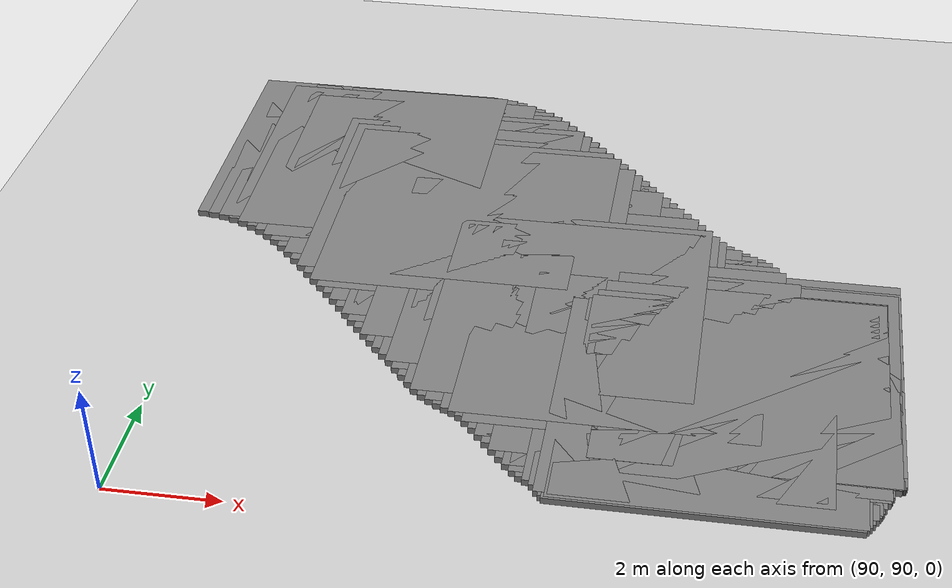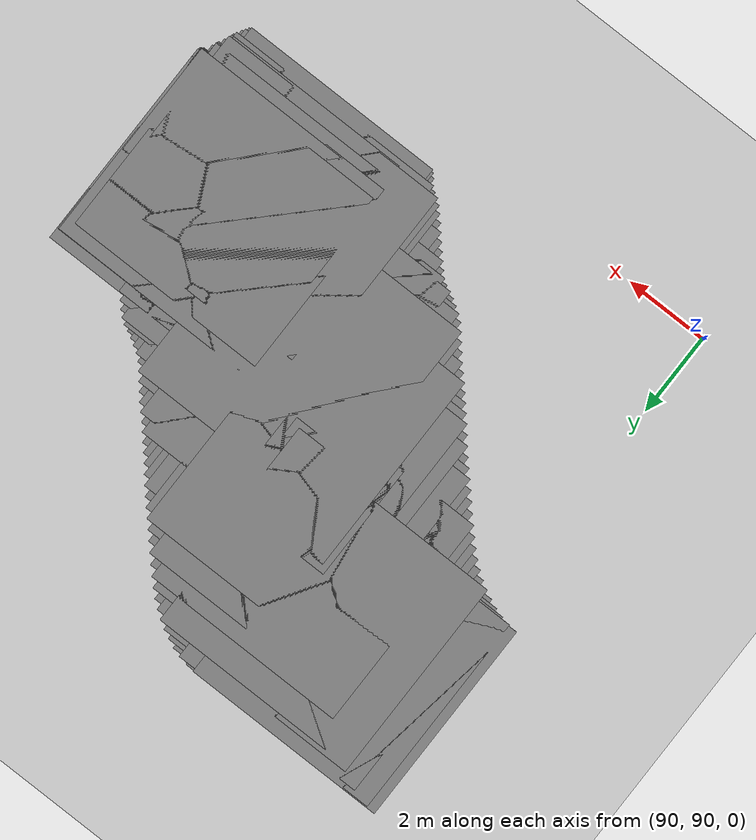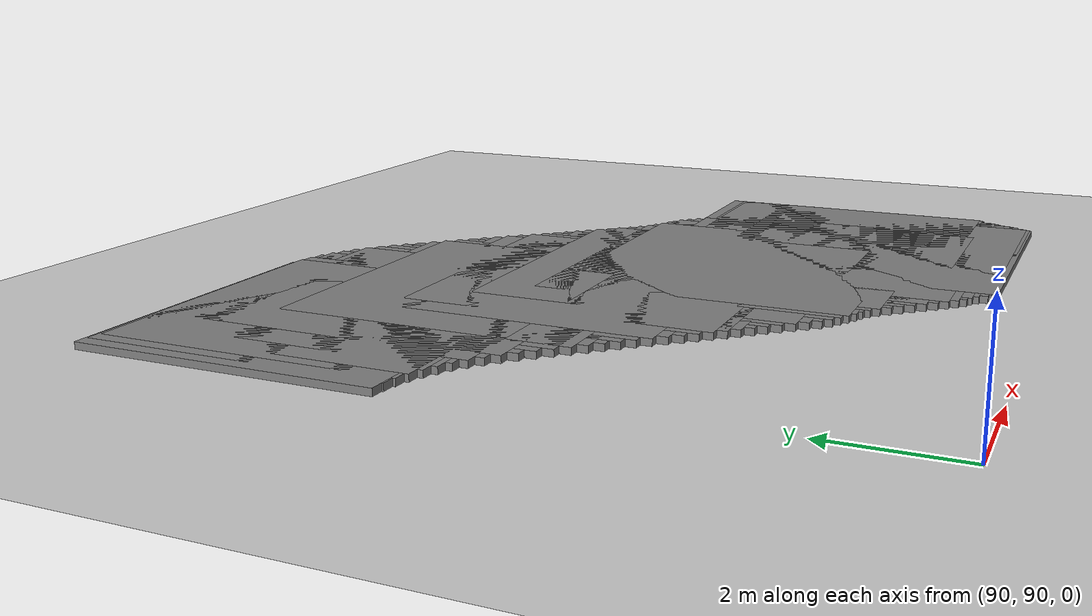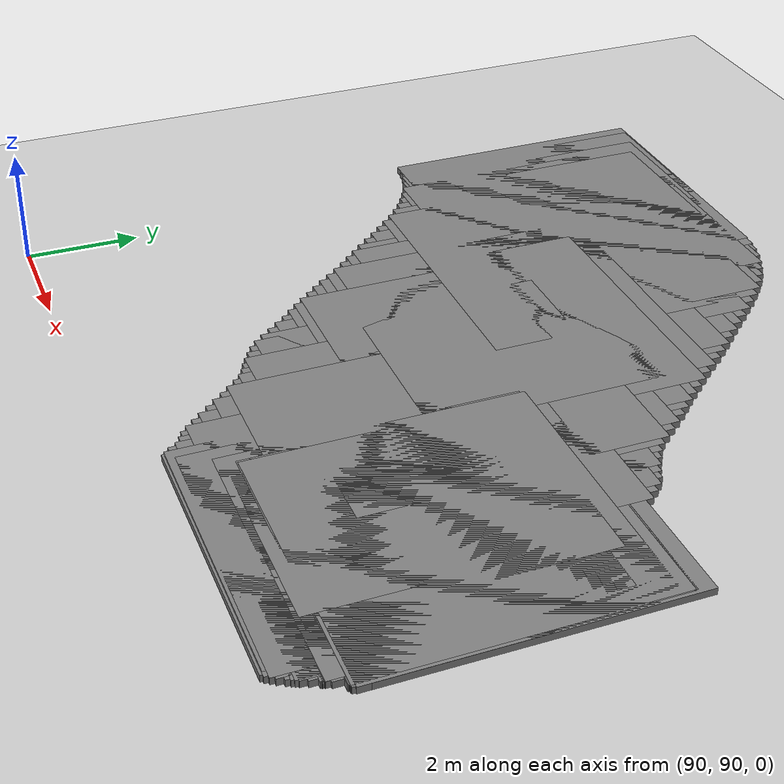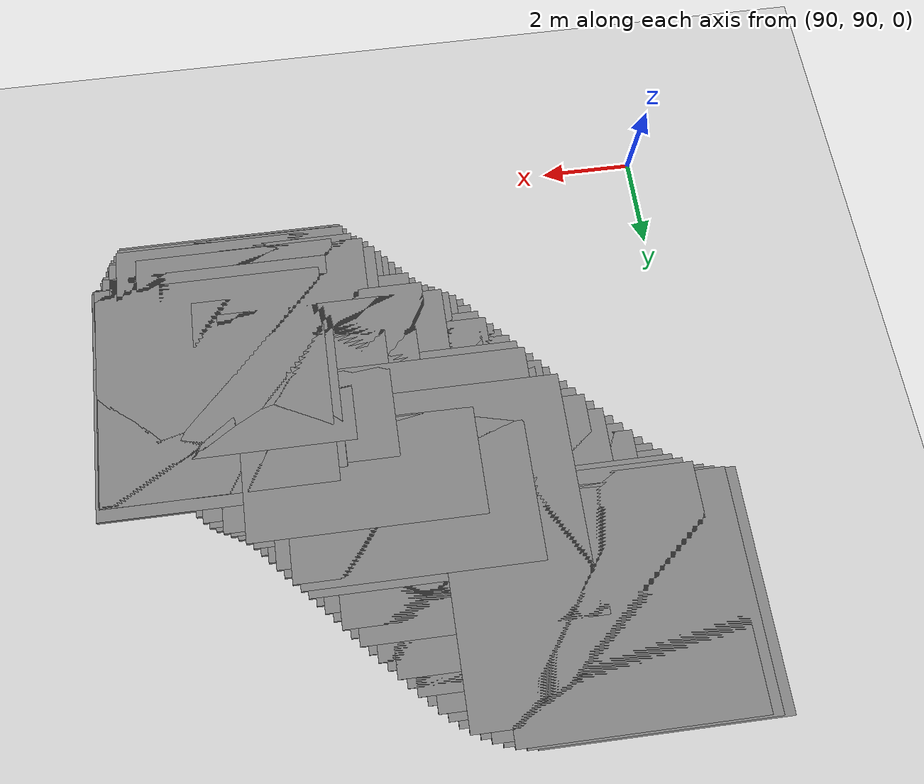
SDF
<sdf version="1.6">
 <world name="default">
  <include><uri>model://sun</uri></include>
  <include><uri>model://ground_plane</uri></include>
  <model name="road_segment_0">
   <static>true</static>
   <link name="link">
    <visual name="visual">
     <geometry><box><size>5.0 5.0 0.2</size></box></geometry>
     <material><ambient>0.5 0.5 0.5 1</ambient><diffuse>0.5 0.5 0.5 1</diffuse></material>
     <pose>100.0 94.5166298929436 0.0 0 0 0</pose>
    </visual>
    <collision name="collision">
     <geometry><box><size>5.0 5.0 0.2</size></box></geometry>
     <pose>100.0 94.5166298929436 0.0 0 0 0</pose>
    </collision>
   </link>
  </model>
  <model name="road_segment_1">
   <static>true</static>
   <link name="link">
    <visual name="visual">
     <geometry><box><size>5.0 5.0 0.2</size></box></geometry>
     <material><ambient>0.5 0.5 0.5 1</ambient><diffuse>0.5 0.5 0.5 1</diffuse></material>
     <pose>99.99839161802979 94.30661109748615 0.0 0 0 0</pose>
    </visual>
    <collision name="collision">
     <geometry><box><size>5.0 5.0 0.2</size></box></geometry>
     <pose>99.99839161802979 94.30661109748615 0.0 0 0 0</pose>
    </collision>
   </link>
  </model>
  <model name="road_segment_2">
   <static>true</static>
   <link name="link">
    <visual name="visual">
     <geometry><box><size>5.0 5.0 0.2</size></box></geometry>
     <material><ambient>0.5 0.5 0.5 1</ambient><diffuse>0.5 0.5 0.5 1</diffuse></material>
     <pose>99.97909103441992 94.25308490643219 0.0 0 0 0</pose>
    </visual>
    <collision name="collision">
     <geometry><box><size>5.0 5.0 0.2</size></box></geometry>
     <pose>99.97909103441992 94.25308490643219 0.0 0 0 0</pose>
    </collision>
   </link>
  </model>
  <model name="road_segment_3">
   <static>true</static>
   <link name="link">
    <visual name="visual">
     <geometry><box><size>5.0 5.0 0.2</size></box></geometry>
     <material><ambient>0.5 0.5 0.5 1</ambient><diffuse>0.5 0.5 0.5 1</diffuse></material>
     <pose>99.96415605901025 94.24654735637526 0.0 0 0 0</pose>
    </visual>
    <collision name="collision">
     <geometry><box><size>5.0 5.0 0.2</size></box></geometry>
     <pose>99.96415605901025 94.24654735637526 0.0 0 0 0</pose>
    </collision>
   </link>
  </model>
  <model name="road_segment_4">
   <static>true</static>
   <link name="link">
    <visual name="visual">
     <geometry><box><size>5.0 5.0 0.2</size></box></geometry>
     <material><ambient>0.5 0.5 0.5 1</ambient><diffuse>0.5 0.5 0.5 1</diffuse></material>
     <pose>99.95450576718899 94.24613875949943 0.0 0 0 0</pose>
    </visual>
    <collision name="collision">
     <geometry><box><size>5.0 5.0 0.2</size></box></geometry>
     <pose>99.95450576718899 94.24613875949943 0.0 0 0 0</pose>
    </collision>
   </link>
  </model>
  <model name="road_segment_5">
   <static>true</static>
   <link name="link">
    <visual name="visual">
     <geometry><box><size>5.0 5.0 0.2</size></box></geometry>
     <material><ambient>0.5 0.5 0.5 1</ambient><diffuse>0.5 0.5 0.5 1</diffuse></material>
     <pose>99.94439593768995 94.25594508457758 0.0 0 0 0</pose>
    </visual>
    <collision name="collision">
     <geometry><box><size>5.0 5.0 0.2</size></box></geometry>
     <pose>99.94439593768995 94.25594508457758 0.0 0 0 0</pose>
    </collision>
   </link>
  </model>
  <model name="road_segment_6">
   <static>true</static>
   <link name="link">
    <visual name="visual">
     <geometry><box><size>5.0 5.0 0.2</size></box></geometry>
     <material><ambient>0.5 0.5 0.5 1</ambient><diffuse>0.5 0.5 0.5 1</diffuse></material>
     <pose>99.93681356554934 94.25512789081864 0.0 0 0 0</pose>
    </visual>
    <collision name="collision">
     <geometry><box><size>5.0 5.0 0.2</size></box></geometry>
     <pose>99.93681356554934 94.25512789081864 0.0 0 0 0</pose>
    </collision>
   </link>
  </model>
  <model name="road_segment_7">
   <static>true</static>
   <link name="link">
    <visual name="visual">
     <geometry><box><size>5.0 5.0 0.2</size></box></geometry>
     <material><ambient>0.5 0.5 0.5 1</ambient><diffuse>0.5 0.5 0.5 1</diffuse></material>
     <pose>99.9577225311294 94.2506333251554 0.0 0 0 0</pose>
    </visual>
    <collision name="collision">
     <geometry><box><size>5.0 5.0 0.2</size></box></geometry>
     <pose>99.9577225311294 94.2506333251554 0.0 0 0 0</pose>
    </collision>
   </link>
  </model>
  <model name="road_segment_8">
   <static>true</static>
   <link name="link">
    <visual name="visual">
     <geometry><box><size>5.0 5.0 0.2</size></box></geometry>
     <material><ambient>0.5 0.5 0.5 1</ambient><diffuse>0.5 0.5 0.5 1</diffuse></material>
     <pose>99.95726299341896 94.2469559532511 0.0 0 0 0</pose>
    </visual>
    <collision name="collision">
     <geometry><box><size>5.0 5.0 0.2</size></box></geometry>
     <pose>99.95726299341896 94.2469559532511 0.0 0 0 0</pose>
    </collision>
   </link>
  </model>
  <model name="road_segment_9">
   <static>true</static>
   <link name="link">
    <visual name="visual">
     <geometry><box><size>5.0 5.0 0.2</size></box></geometry>
     <material><ambient>0.5 0.5 0.5 1</ambient><diffuse>0.5 0.5 0.5 1</diffuse></material>
     <pose>99.95473553602788 94.24286998447096 0.0 0 0 0</pose>
    </visual>
    <collision name="collision">
     <geometry><box><size>5.0 5.0 0.2</size></box></geometry>
     <pose>99.95473553602788 94.24286998447096 0.0 0 0 0</pose>
    </collision>
   </link>
  </model>
  <model name="road_segment_10">
   <static>true</static>
   <link name="link">
    <visual name="visual">
     <geometry><box><size>5.0 5.0 0.2</size></box></geometry>
     <material><ambient>0.5 0.5 0.5 1</ambient><diffuse>0.5 0.5 0.5 1</diffuse></material>
     <pose>99.94140894258841 94.25022472827956 0.0 0 0 0</pose>
    </visual>
    <collision name="collision">
     <geometry><box><size>5.0 5.0 0.2</size></box></geometry>
     <pose>99.94140894258841 94.25022472827956 0.0 0 0 0</pose>
    </collision>
   </link>
  </model>
  <model name="road_segment_11">
   <static>true</static>
   <link name="link">
    <visual name="visual">
     <geometry><box><size>5.0 5.0 0.2</size></box></geometry>
     <material><ambient>0.5 0.5 0.5 1</ambient><diffuse>0.5 0.5 0.5 1</diffuse></material>
     <pose>99.93796240980912 94.24818174388588 0.0 0 0 0</pose>
    </visual>
    <collision name="collision">
     <geometry><box><size>5.0 5.0 0.2</size></box></geometry>
     <pose>99.93796240980912 94.24818174388588 0.0 0 0 0</pose>
    </collision>
   </link>
  </model>
  <model name="road_segment_12">
   <static>true</static>
   <link name="link">
    <visual name="visual">
     <geometry><box><size>5.0 5.0 0.2</size></box></geometry>
     <material><ambient>0.5 0.5 0.5 1</ambient><diffuse>0.5 0.5 0.5 1</diffuse></material>
     <pose>99.936124259 94.24205279071202 0.0 0 0 0</pose>
    </visual>
    <collision name="collision">
     <geometry><box><size>5.0 5.0 0.2</size></box></geometry>
     <pose>99.936124259 94.24205279071202 0.0 0 0 0</pose>
    </collision>
   </link>
  </model>
  <model name="road_segment_13">
   <static>true</static>
   <link name="link">
    <visual name="visual">
     <geometry><box><size>5.0 5.0 0.2</size></box></geometry>
     <material><ambient>0.5 0.5 0.5 1</ambient><diffuse>0.5 0.5 0.5 1</diffuse></material>
     <pose>99.93152888192827 94.23755822505605 0.0 0 0 0</pose>
    </visual>
    <collision name="collision">
     <geometry><box><size>5.0 5.0 0.2</size></box></geometry>
     <pose>99.93152888192827 94.23755822505605 0.0 0 0 0</pose>
    </collision>
   </link>
  </model>
  <model name="road_segment_14">
   <static>true</static>
   <link name="link">
    <visual name="visual">
     <geometry><box><size>5.0 5.0 0.2</size></box></geometry>
     <material><ambient>0.5 0.5 0.5 1</ambient><diffuse>0.5 0.5 0.5 1</diffuse></material>
     <pose>99.92486558520854 94.22693470621898 0.0 0 0 0</pose>
    </visual>
    <collision name="collision">
     <geometry><box><size>5.0 5.0 0.2</size></box></geometry>
     <pose>99.92486558520854 94.22693470621898 0.0 0 0 0</pose>
    </collision>
   </link>
  </model>
  <model name="road_segment_15">
   <static>true</static>
   <link name="link">
    <visual name="visual">
     <geometry><box><size>5.0 5.0 0.2</size></box></geometry>
     <material><ambient>0.5 0.5 0.5 1</ambient><diffuse>0.5 0.5 0.5 1</diffuse></material>
     <pose>99.92164882126812 94.22775189997064 0.0 0 0 0</pose>
    </visual>
    <collision name="collision">
     <geometry><box><size>5.0 5.0 0.2</size></box></geometry>
     <pose>99.92164882126812 94.22775189997064 0.0 0 0 0</pose>
    </collision>
   </link>
  </model>
  <model name="road_segment_16">
   <static>true</static>
   <link name="link">
    <visual name="visual">
     <geometry><box><size>5.0 5.0 0.2</size></box></geometry>
     <material><ambient>0.5 0.5 0.5 1</ambient><diffuse>0.5 0.5 0.5 1</diffuse></material>
     <pose>99.91291760486773 94.21467679986404 0.0 0 0 0</pose>
    </visual>
    <collision name="collision">
     <geometry><box><size>5.0 5.0 0.2</size></box></geometry>
     <pose>99.91291760486773 94.21467679986404 0.0 0 0 0</pose>
    </collision>
   </link>
  </model>
  <model name="road_segment_17">
   <static>true</static>
   <link name="link">
    <visual name="visual">
     <geometry><box><size>5.0 5.0 0.2</size></box></geometry>
     <material><ambient>0.5 0.5 0.5 1</ambient><diffuse>0.5 0.5 0.5 1</diffuse></material>
     <pose>99.8012499425372 94.04837787038967 0.0 0 0 0</pose>
    </visual>
    <collision name="collision">
     <geometry><box><size>5.0 5.0 0.2</size></box></geometry>
     <pose>99.8012499425372 94.04837787038967 0.0 0 0 0</pose>
    </collision>
   </link>
  </model>
  <model name="road_segment_18">
   <static>true</static>
   <link name="link">
    <visual name="visual">
     <geometry><box><size>5.0 5.0 0.2</size></box></geometry>
     <material><ambient>0.5 0.5 0.5 1</ambient><diffuse>0.5 0.5 0.5 1</diffuse></material>
     <pose>99.75391755891708 93.93846531012187 0.0 0 0 0</pose>
    </visual>
    <collision name="collision">
     <geometry><box><size>5.0 5.0 0.2</size></box></geometry>
     <pose>99.75391755891708 93.93846531012187 0.0 0 0 0</pose>
    </collision>
   </link>
  </model>
  <model name="road_segment_19">
   <static>true</static>
   <link name="link">
    <visual name="visual">
     <geometry><box><size>5.0 5.0 0.2</size></box></geometry>
     <material><ambient>0.5 0.5 0.5 1</ambient><diffuse>0.5 0.5 0.5 1</diffuse></material>
     <pose>99.74380772941804 93.90986352863912 0.0 0 0 0</pose>
    </visual>
    <collision name="collision">
     <geometry><box><size>5.0 5.0 0.2</size></box></geometry>
     <pose>99.74380772941804 93.90986352863912 0.0 0 0 0</pose>
    </collision>
   </link>
  </model>
  <model name="road_segment_20">
   <static>true</static>
   <link name="link">
    <visual name="visual">
     <geometry><box><size>5.0 5.0 0.2</size></box></geometry>
     <material><ambient>0.5 0.5 0.5 1</ambient><diffuse>0.5 0.5 0.5 1</diffuse></material>
     <pose>99.74817333761823 93.9298847756785 0.0 0 0 0</pose>
    </visual>
    <collision name="collision">
     <geometry><box><size>5.0 5.0 0.2</size></box></geometry>
     <pose>99.74817333761823 93.9298847756785 0.0 0 0 0</pose>
    </collision>
   </link>
  </model>
  <model name="road_segment_21">
   <static>true</static>
   <link name="link">
    <visual name="visual">
     <geometry><box><size>5.0 5.0 0.2</size></box></geometry>
     <material><ambient>0.5 0.5 0.5 1</ambient><diffuse>0.5 0.5 0.5 1</diffuse></material>
     <pose>99.75575570975884 93.94009969763249 0.0 0 0 0</pose>
    </visual>
    <collision name="collision">
     <geometry><box><size>5.0 5.0 0.2</size></box></geometry>
     <pose>99.75575570975884 93.94009969763249 0.0 0 0 0</pose>
    </collision>
   </link>
  </model>
  <model name="road_segment_22">
   <static>true</static>
   <link name="link">
    <visual name="visual">
     <geometry><box><size>5.0 5.0 0.2</size></box></geometry>
     <material><ambient>0.5 0.5 0.5 1</ambient><diffuse>0.5 0.5 0.5 1</diffuse></material>
     <pose>99.75828316711728 93.9629811228245 0.0 0 0 0</pose>
    </visual>
    <collision name="collision">
     <geometry><box><size>5.0 5.0 0.2</size></box></geometry>
     <pose>99.75828316711728 93.9629811228245 0.0 0 0 0</pose>
    </collision>
   </link>
  </model>
  <model name="road_segment_23">
   <static>true</static>
   <link name="link">
    <visual name="visual">
     <geometry><box><size>5.0 5.0 0.2</size></box></geometry>
     <material><ambient>0.5 0.5 0.5 1</ambient><diffuse>0.5 0.5 0.5 1</diffuse></material>
     <pose>99.76058085563682 93.96788428536357 0.0 0 0 0</pose>
    </visual>
    <collision name="collision">
     <geometry><box><size>5.0 5.0 0.2</size></box></geometry>
     <pose>99.76058085563682 93.96788428536357 0.0 0 0 0</pose>
    </collision>
   </link>
  </model>
  <model name="road_segment_24">
   <static>true</static>
   <link name="link">
    <visual name="visual">
     <geometry><box><size>5.0 5.0 0.2</size></box></geometry>
     <material><ambient>0.5 0.5 0.5 1</ambient><diffuse>0.5 0.5 0.5 1</diffuse></material>
     <pose>99.76264877531746 93.96747568848048 0.0 0 0 0</pose>
    </visual>
    <collision name="collision">
     <geometry><box><size>5.0 5.0 0.2</size></box></geometry>
     <pose>99.76264877531746 93.96747568848048 0.0 0 0 0</pose>
    </collision>
   </link>
  </model>
  <model name="road_segment_25">
   <static>true</static>
   <link name="link">
    <visual name="visual">
     <geometry><box><size>5.0 5.0 0.2</size></box></geometry>
     <material><ambient>0.5 0.5 0.5 1</ambient><diffuse>0.5 0.5 0.5 1</diffuse></material>
     <pose>99.76264877531746 93.96706709160463 0.0 0 0 0</pose>
    </visual>
    <collision name="collision">
     <geometry><box><size>5.0 5.0 0.2</size></box></geometry>
     <pose>99.76264877531746 93.96706709160463 0.0 0 0 0</pose>
    </collision>
   </link>
  </model>
  <model name="road_segment_26">
   <static>true</static>
   <link name="link">
    <visual name="visual">
     <geometry><box><size>5.0 5.0 0.2</size></box></geometry>
     <material><ambient>0.5 0.5 0.5 1</ambient><diffuse>0.5 0.5 0.5 1</diffuse></material>
     <pose>99.76333808186679 93.97319604477848 0.0 0 0 0</pose>
    </visual>
    <collision name="collision">
     <geometry><box><size>5.0 5.0 0.2</size></box></geometry>
     <pose>99.76333808186679 93.97319604477848 0.0 0 0 0</pose>
    </collision>
   </link>
  </model>
  <model name="road_segment_27">
   <static>true</static>
   <link name="link">
    <visual name="visual">
     <geometry><box><size>5.0 5.0 0.2</size></box></geometry>
     <material><ambient>0.5 0.5 0.5 1</ambient><diffuse>0.5 0.5 0.5 1</diffuse></material>
     <pose>99.76609530809678 93.9736046416543 0.0 0 0 0</pose>
    </visual>
    <collision name="collision">
     <geometry><box><size>5.0 5.0 0.2</size></box></geometry>
     <pose>99.76609530809678 93.9736046416543 0.0 0 0 0</pose>
    </collision>
   </link>
  </model>
  <model name="road_segment_28">
   <static>true</static>
   <link name="link">
    <visual name="visual">
     <geometry><box><size>5.0 5.0 0.2</size></box></geometry>
     <material><ambient>0.5 0.5 0.5 1</ambient><diffuse>0.5 0.5 0.5 1</diffuse></material>
     <pose>99.76701438351766 93.97156165726787 0.0 0 0 0</pose>
    </visual>
    <collision name="collision">
     <geometry><box><size>5.0 5.0 0.2</size></box></geometry>
     <pose>99.76701438351766 93.97156165726787 0.0 0 0 0</pose>
    </collision>
   </link>
  </model>
  <model name="road_segment_29">
   <static>true</static>
   <link name="link">
    <visual name="visual">
     <geometry><box><size>5.0 5.0 0.2</size></box></geometry>
     <material><ambient>0.5 0.5 0.5 1</ambient><diffuse>0.5 0.5 0.5 1</diffuse></material>
     <pose>99.76678461467876 93.96911007599833 0.0 0 0 0</pose>
    </visual>
    <collision name="collision">
     <geometry><box><size>5.0 5.0 0.2</size></box></geometry>
     <pose>99.76678461467876 93.96911007599833 0.0 0 0 0</pose>
    </collision>
   </link>
  </model>
  <model name="road_segment_30">
   <static>true</static>
   <link name="link">
    <visual name="visual">
     <geometry><box><size>5.0 5.0 0.2</size></box></geometry>
     <material><ambient>0.5 0.5 0.5 1</ambient><diffuse>0.5 0.5 0.5 1</diffuse></material>
     <pose>99.767703690067 93.9719702541437 0.0 0 0 0</pose>
    </visual>
    <collision name="collision">
     <geometry><box><size>5.0 5.0 0.2</size></box></geometry>
     <pose>99.767703690067 93.9719702541437 0.0 0 0 0</pose>
    </collision>
   </link>
  </model>
  <model name="road_segment_31">
   <static>true</static>
   <link name="link">
    <visual name="visual">
     <geometry><box><size>5.0 5.0 0.2</size></box></geometry>
     <material><ambient>0.5 0.5 0.5 1</ambient><diffuse>0.5 0.5 0.5 1</diffuse></material>
     <pose>99.67878314415827 93.7778867369455 0.0 0 0 0</pose>
    </visual>
    <collision name="collision">
     <geometry><box><size>5.0 5.0 0.2</size></box></geometry>
     <pose>99.67878314415827 93.7778867369455 0.0 0 0 0</pose>
    </collision>
   </link>
  </model>
  <model name="road_segment_32">
   <static>true</static>
   <link name="link">
    <visual name="visual">
     <geometry><box><size>5.0 5.0 0.2</size></box></geometry>
     <material><ambient>0.5 0.5 0.5 1</ambient><diffuse>0.5 0.5 0.5 1</diffuse></material>
     <pose>99.63604613757725 93.66919996731248 0.0 0 0 0</pose>
    </visual>
    <collision name="collision">
     <geometry><box><size>5.0 5.0 0.2</size></box></geometry>
     <pose>99.63604613757725 93.66919996731248 0.0 0 0 0</pose>
    </collision>
   </link>
  </model>
  <model name="road_segment_33">
   <static>true</static>
   <link name="link">
    <visual name="visual">
     <geometry><box><size>5.0 5.0 0.2</size></box></geometry>
     <material><ambient>0.5 0.5 0.5 1</ambient><diffuse>0.5 0.5 0.5 1</diffuse></material>
     <pose>99.6098524883761 93.62057693879035 0.0 0 0 0</pose>
    </visual>
    <collision name="collision">
     <geometry><box><size>5.0 5.0 0.2</size></box></geometry>
     <pose>99.6098524883761 93.62057693879035 0.0 0 0 0</pose>
    </collision>
   </link>
  </model>
  <model name="road_segment_34">
   <static>true</static>
   <link name="link">
    <visual name="visual">
     <geometry><box><size>5.0 5.0 0.2</size></box></geometry>
     <material><ambient>0.5 0.5 0.5 1</ambient><diffuse>0.5 0.5 0.5 1</diffuse></material>
     <pose>99.58894352279603 93.5739968946619 0.0 0 0 0</pose>
    </visual>
    <collision name="collision">
     <geometry><box><size>5.0 5.0 0.2</size></box></geometry>
     <pose>99.58894352279603 93.5739968946619 0.0 0 0 0</pose>
    </collision>
   </link>
  </model>
  <model name="road_segment_35">
   <static>true</static>
   <link name="link">
    <visual name="visual">
     <geometry><box><size>5.0 5.0 0.2</size></box></geometry>
     <material><ambient>0.5 0.5 0.5 1</ambient><diffuse>0.5 0.5 0.5 1</diffuse></material>
     <pose>99.55700565229604 93.50698700661825 0.0 0 0 0</pose>
    </visual>
    <collision name="collision">
     <geometry><box><size>5.0 5.0 0.2</size></box></geometry>
     <pose>99.55700565229604 93.50698700661825 0.0 0 0 0</pose>
    </collision>
   </link>
  </model>
  <model name="road_segment_36">
   <static>true</static>
   <link name="link">
    <visual name="visual">
     <geometry><box><size>5.0 5.0 0.2</size></box></geometry>
     <material><ambient>0.5 0.5 0.5 1</ambient><diffuse>0.5 0.5 0.5 1</diffuse></material>
     <pose>99.49795505720667 93.40442919015906 0.0 0 0 0</pose>
    </visual>
    <collision name="collision">
     <geometry><box><size>5.0 5.0 0.2</size></box></geometry>
     <pose>99.49795505720667 93.40442919015906 0.0 0 0 0</pose>
    </collision>
   </link>
  </model>
  <model name="road_segment_37">
   <static>true</static>
   <link name="link">
    <visual name="visual">
     <geometry><box><size>5.0 5.0 0.2</size></box></geometry>
     <material><ambient>0.5 0.5 0.5 1</ambient><diffuse>0.5 0.5 0.5 1</diffuse></material>
     <pose>99.45039290471502 93.33292473645217 0.0 0 0 0</pose>
    </visual>
    <collision name="collision">
     <geometry><box><size>5.0 5.0 0.2</size></box></geometry>
     <pose>99.45039290471502 93.33292473645217 0.0 0 0 0</pose>
    </collision>
   </link>
  </model>
  <model name="road_segment_38">
   <static>true</static>
   <link name="link">
    <visual name="visual">
     <geometry><box><size>5.0 5.0 0.2</size></box></geometry>
     <material><ambient>0.5 0.5 0.5 1</ambient><diffuse>0.5 0.5 0.5 1</diffuse></material>
     <pose>99.40627728503533 93.27000081718866 0.0 0 0 0</pose>
    </visual>
    <collision name="collision">
     <geometry><box><size>5.0 5.0 0.2</size></box></geometry>
     <pose>99.40627728503533 93.27000081718866 0.0 0 0 0</pose>
    </collision>
   </link>
  </model>
  <model name="road_segment_39">
   <static>true</static>
   <link name="link">
    <visual name="visual">
     <geometry><box><size>5.0 5.0 0.2</size></box></geometry>
     <material><ambient>0.5 0.5 0.5 1</ambient><diffuse>0.5 0.5 0.5 1</diffuse></material>
     <pose>99.36216166535563 93.22954972623407 0.0 0 0 0</pose>
    </visual>
    <collision name="collision">
     <geometry><box><size>5.0 5.0 0.2</size></box></geometry>
     <pose>99.36216166535563 93.22954972623407 0.0 0 0 0</pose>
    </collision>
   </link>
  </model>
  <model name="road_segment_40">
   <static>true</static>
   <link name="link">
    <visual name="visual">
     <geometry><box><size>5.0 5.0 0.2</size></box></geometry>
     <material><ambient>0.5 0.5 0.5 1</ambient><diffuse>0.5 0.5 0.5 1</diffuse></material>
     <pose>99.30586829649624 93.27939854539096 0.0 0 0 0</pose>
    </visual>
    <collision name="collision">
     <geometry><box><size>5.0 5.0 0.2</size></box></geometry>
     <pose>99.30586829649624 93.27939854539096 0.0 0 0 0</pose>
    </collision>
   </link>
  </model>
  <model name="road_segment_41">
   <static>true</static>
   <link name="link">
    <visual name="visual">
     <geometry><box><size>5.0 5.0 0.2</size></box></geometry>
     <material><ambient>0.5 0.5 0.5 1</ambient><diffuse>0.5 0.5 0.5 1</diffuse></material>
     <pose>99.21878590136399 93.36520388983924 0.0 0 0 0</pose>
    </visual>
    <collision name="collision">
     <geometry><box><size>5.0 5.0 0.2</size></box></geometry>
     <pose>99.21878590136399 93.36520388983924 0.0 0 0 0</pose>
    </collision>
   </link>
  </model>
  <model name="road_segment_42">
   <static>true</static>
   <link name="link">
    <visual name="visual">
     <geometry><box><size>5.0 5.0 0.2</size></box></geometry>
     <material><ambient>0.5 0.5 0.5 1</ambient><diffuse>0.5 0.5 0.5 1</diffuse></material>
     <pose>99.13170350626437 93.49472910027058 0.0 0 0 0</pose>
    </visual>
    <collision name="collision">
     <geometry><box><size>5.0 5.0 0.2</size></box></geometry>
     <pose>99.13170350626437 93.49472910027058 0.0 0 0 0</pose>
    </collision>
   </link>
  </model>
  <model name="road_segment_43">
   <static>true</static>
   <link name="link">
    <visual name="visual">
     <geometry><box><size>5.0 5.0 0.2</size></box></geometry>
     <material><ambient>0.5 0.5 0.5 1</ambient><diffuse>0.5 0.5 0.5 1</diffuse></material>
     <pose>99.01314277834256 93.58543760725065 0.0 0 0 0</pose>
    </visual>
    <collision name="collision">
     <geometry><box><size>5.0 5.0 0.2</size></box></geometry>
     <pose>99.01314277834256 93.58543760725065 0.0 0 0 0</pose>
    </collision>
   </link>
  </model>
  <model name="road_segment_44">
   <static>true</static>
   <link name="link">
    <visual name="visual">
     <geometry><box><size>5.0 5.0 0.2</size></box></geometry>
     <material><ambient>0.5 0.5 0.5 1</ambient><diffuse>0.5 0.5 0.5 1</diffuse></material>
     <pose>98.89343320619362 93.6491787202731 0.0 0 0 0</pose>
    </visual>
    <collision name="collision">
     <geometry><box><size>5.0 5.0 0.2</size></box></geometry>
     <pose>98.89343320619362 93.6491787202731 0.0 0 0 0</pose>
    </collision>
   </link>
  </model>
  <model name="road_segment_45">
   <static>true</static>
   <link name="link">
    <visual name="visual">
     <geometry><box><size>5.0 5.0 0.2</size></box></geometry>
     <material><ambient>0.5 0.5 0.5 1</ambient><diffuse>0.5 0.5 0.5 1</diffuse></material>
     <pose>98.77142594549248 93.75623110238827 0.0 0 0 0</pose>
    </visual>
    <collision name="collision">
     <geometry><box><size>5.0 5.0 0.2</size></box></geometry>
     <pose>98.77142594549248 93.75623110238827 0.0 0 0 0</pose>
    </collision>
   </link>
  </model>
  <model name="road_segment_46">
   <static>true</static>
   <link name="link">
    <visual name="visual">
     <geometry><box><size>5.0 5.0 0.2</size></box></geometry>
     <material><ambient>0.5 0.5 0.5 1</ambient><diffuse>0.5 0.5 0.5 1</diffuse></material>
     <pose>98.6452828454627 93.88902508784807 0.0 0 0 0</pose>
    </visual>
    <collision name="collision">
     <geometry><box><size>5.0 5.0 0.2</size></box></geometry>
     <pose>98.6452828454627 93.88902508784807 0.0 0 0 0</pose>
    </collision>
   </link>
  </model>
  <model name="road_segment_47">
   <static>true</static>
   <link name="link">
    <visual name="visual">
     <geometry><box><size>5.0 5.0 0.2</size></box></geometry>
     <material><ambient>0.5 0.5 0.5 1</ambient><diffuse>0.5 0.5 0.5 1</diffuse></material>
     <pose>98.51063829787144 94.03366838277245 0.0 0 0 0</pose>
    </visual>
    <collision name="collision">
     <geometry><box><size>5.0 5.0 0.2</size></box></geometry>
     <pose>98.51063829787144 94.03366838277245 0.0 0 0 0</pose>
    </collision>
   </link>
  </model>
  <model name="road_segment_48">
   <static>true</static>
   <link name="link">
    <visual name="visual">
     <geometry><box><size>5.0 5.0 0.2</size></box></geometry>
     <material><ambient>0.5 0.5 0.5 1</ambient><diffuse>0.5 0.5 0.5 1</diffuse></material>
     <pose>98.37530444373084 94.19138677780346 0.0 0 0 0</pose>
    </visual>
    <collision name="collision">
     <geometry><box><size>5.0 5.0 0.2</size></box></geometry>
     <pose>98.37530444373084 94.19138677780346 0.0 0 0 0</pose>
    </collision>
   </link>
  </model>
  <model name="road_segment_49">
   <static>true</static>
   <link name="link">
    <visual name="visual">
     <geometry><box><size>5.0 5.0 0.2</size></box></geometry>
     <material><ambient>0.5 0.5 0.5 1</ambient><diffuse>0.5 0.5 0.5 1</diffuse></material>
     <pose>98.23399659941984 94.34542780093015 0.0 0 0 0</pose>
    </visual>
    <collision name="collision">
     <geometry><box><size>5.0 5.0 0.2</size></box></geometry>
     <pose>98.23399659941984 94.34542780093015 0.0 0 0 0</pose>
    </collision>
   </link>
  </model>
  <model name="road_segment_50">
   <static>true</static>
   <link name="link">
    <visual name="visual">
     <geometry><box><size>5.0 5.0 0.2</size></box></geometry>
     <material><ambient>0.5 0.5 0.5 1</ambient><diffuse>0.5 0.5 0.5 1</diffuse></material>
     <pose>98.09636505672705 94.50437198659591 0.0 0 0 0</pose>
    </visual>
    <collision name="collision">
     <geometry><box><size>5.0 5.0 0.2</size></box></geometry>
     <pose>98.09636505672705 94.50437198659591 0.0 0 0 0</pose>
    </collision>
   </link>
  </model>
  <model name="road_segment_51">
   <static>true</static>
   <link name="link">
    <visual name="visual">
     <geometry><box><size>5.0 5.0 0.2</size></box></geometry>
     <material><ambient>0.5 0.5 0.5 1</ambient><diffuse>0.5 0.5 0.5 1</diffuse></material>
     <pose>97.95942282061624 94.65514423469415 0.0 0 0 0</pose>
    </visual>
    <collision name="collision">
     <geometry><box><size>5.0 5.0 0.2</size></box></geometry>
     <pose>97.95942282061624 94.65514423469415 0.0 0 0 0</pose>
    </collision>
   </link>
  </model>
  <model name="road_segment_52">
   <static>true</static>
   <link name="link">
    <visual name="visual">
     <geometry><box><size>5.0 5.0 0.2</size></box></geometry>
     <material><ambient>0.5 0.5 0.5 1</ambient><diffuse>0.5 0.5 0.5 1</diffuse></material>
     <pose>97.8259271173174 94.80101332025329 0.0 0 0 0</pose>
    </visual>
    <collision name="collision">
     <geometry><box><size>5.0 5.0 0.2</size></box></geometry>
     <pose>97.8259271173174 94.80101332025329 0.0 0 0 0</pose>
    </collision>
   </link>
  </model>
  <model name="road_segment_53">
   <static>true</static>
   <link name="link">
    <visual name="visual">
     <geometry><box><size>5.0 5.0 0.2</size></box></geometry>
     <material><ambient>0.5 0.5 0.5 1</ambient><diffuse>0.5 0.5 0.5 1</diffuse></material>
     <pose>97.69817563528476 94.92440957751079 0.0 0 0 0</pose>
    </visual>
    <collision name="collision">
     <geometry><box><size>5.0 5.0 0.2</size></box></geometry>
     <pose>97.69817563528476 94.92440957751079 0.0 0 0 0</pose>
    </collision>
   </link>
  </model>
  <model name="road_segment_54">
   <static>true</static>
   <link name="link">
    <visual name="visual">
     <geometry><box><size>5.0 5.0 0.2</size></box></geometry>
     <material><ambient>0.5 0.5 0.5 1</ambient><diffuse>0.5 0.5 0.5 1</diffuse></material>
     <pose>97.56559900737413 95.0122579063455 0.0 0 0 0</pose>
    </visual>
    <collision name="collision">
     <geometry><box><size>5.0 5.0 0.2</size></box></geometry>
     <pose>97.56559900737413 95.0122579063455 0.0 0 0 0</pose>
    </collision>
   </link>
  </model>
  <model name="road_segment_55">
   <static>true</static>
   <link name="link">
    <visual name="visual">
     <geometry><box><size>5.0 5.0 0.2</size></box></geometry>
     <material><ambient>0.5 0.5 0.5 1</ambient><diffuse>0.5 0.5 0.5 1</diffuse></material>
     <pose>97.42360185651381 95.07640761624378 0.0 0 0 0</pose>
    </visual>
    <collision name="collision">
     <geometry><box><size>5.0 5.0 0.2</size></box></geometry>
     <pose>97.42360185651381 95.07640761624378 0.0 0 0 0</pose>
    </collision>
   </link>
  </model>
  <model name="road_segment_56">
   <static>true</static>
   <link name="link">
    <visual name="visual">
     <geometry><box><size>5.0 5.0 0.2</size></box></geometry>
     <material><ambient>0.5 0.5 0.5 1</ambient><diffuse>0.5 0.5 0.5 1</diffuse></material>
     <pose>97.27838794171306 95.15567541063513 0.0 0 0 0</pose>
    </visual>
    <collision name="collision">
     <geometry><box><size>5.0 5.0 0.2</size></box></geometry>
     <pose>97.27838794171306 95.15567541063513 0.0 0 0 0</pose>
    </collision>
   </link>
  </model>
  <model name="road_segment_57">
   <static>true</static>
   <link name="link">
    <visual name="visual">
     <geometry><box><size>5.0 5.0 0.2</size></box></geometry>
     <material><ambient>0.5 0.5 0.5 1</ambient><diffuse>0.5 0.5 0.5 1</diffuse></material>
     <pose>97.13179541381365 95.24597532074662 0.0 0 0 0</pose>
    </visual>
    <collision name="collision">
     <geometry><box><size>5.0 5.0 0.2</size></box></geometry>
     <pose>97.13179541381365 95.24597532074662 0.0 0 0 0</pose>
    </collision>
   </link>
  </model>
  <model name="road_segment_58">
   <static>true</static>
   <link name="link">
    <visual name="visual">
     <geometry><box><size>5.0 5.0 0.2</size></box></geometry>
     <material><ambient>0.5 0.5 0.5 1</ambient><diffuse>0.5 0.5 0.5 1</diffuse></material>
     <pose>96.9806075088425 95.3391354090035 0.0 0 0 0</pose>
    </visual>
    <collision name="collision">
     <geometry><box><size>5.0 5.0 0.2</size></box></geometry>
     <pose>96.9806075088425 95.3391354090035 0.0 0 0 0</pose>
    </collision>
   </link>
  </model>
  <model name="road_segment_59">
   <static>true</static>
   <link name="link">
    <visual name="visual">
     <geometry><box><size>5.0 5.0 0.2</size></box></geometry>
     <material><ambient>0.5 0.5 0.5 1</ambient><diffuse>0.5 0.5 0.5 1</diffuse></material>
     <pose>96.83654243830152 95.46130587561898 0.0 0 0 0</pose>
    </visual>
    <collision name="collision">
     <geometry><box><size>5.0 5.0 0.2</size></box></geometry>
     <pose>96.83654243830152 95.46130587561898 0.0 0 0 0</pose>
    </collision>
   </link>
  </model>
  <model name="road_segment_60">
   <static>true</static>
   <link name="link">
    <visual name="visual">
     <geometry><box><size>5.0 5.0 0.2</size></box></geometry>
     <material><ambient>0.5 0.5 0.5 1</ambient><diffuse>0.5 0.5 0.5 1</diffuse></material>
     <pose>96.6963834382503 95.6182070768983 0.0 0 0 0</pose>
    </visual>
    <collision name="collision">
     <geometry><box><size>5.0 5.0 0.2</size></box></geometry>
     <pose>96.6963834382503 95.6182070768983 0.0 0 0 0</pose>
    </collision>
   </link>
  </model>
  <model name="road_segment_61">
   <static>true</static>
   <link name="link">
    <visual name="visual">
     <geometry><box><size>5.0 5.0 0.2</size></box></geometry>
     <material><ambient>0.5 0.5 0.5 1</ambient><diffuse>0.5 0.5 0.5 1</diffuse></material>
     <pose>96.55323744313019 95.78859197515281 0.0 0 0 0</pose>
    </visual>
    <collision name="collision">
     <geometry><box><size>5.0 5.0 0.2</size></box></geometry>
     <pose>96.55323744313019 95.78859197515281 0.0 0 0 0</pose>
    </collision>
   </link>
  </model>
  <model name="road_segment_62">
   <static>true</static>
   <link name="link">
    <visual name="visual">
     <geometry><box><size>5.0 5.0 0.2</size></box></geometry>
     <material><ambient>0.5 0.5 0.5 1</ambient><diffuse>0.5 0.5 0.5 1</diffuse></material>
     <pose>96.40825329716833 95.95652529214505 0.0 0 0 0</pose>
    </visual>
    <collision name="collision">
     <geometry><box><size>5.0 5.0 0.2</size></box></geometry>
     <pose>96.40825329716833 95.95652529214505 0.0 0 0 0</pose>
    </collision>
   </link>
  </model>
  <model name="road_segment_63">
   <static>true</static>
   <link name="link">
    <visual name="visual">
     <geometry><box><size>5.0 5.0 0.2</size></box></geometry>
     <material><ambient>0.5 0.5 0.5 1</ambient><diffuse>0.5 0.5 0.5 1</diffuse></material>
     <pose>96.2630393823676 96.12936177167636 0.0 0 0 0</pose>
    </visual>
    <collision name="collision">
     <geometry><box><size>5.0 5.0 0.2</size></box></geometry>
     <pose>96.2630393823676 96.12936177167636 0.0 0 0 0</pose>
    </collision>
   </link>
  </model>
  <model name="road_segment_64">
   <static>true</static>
   <link name="link">
    <visual name="visual">
     <geometry><box><size>5.0 5.0 0.2</size></box></geometry>
     <material><ambient>0.5 0.5 0.5 1</ambient><diffuse>0.5 0.5 0.5 1</diffuse></material>
     <pose>96.11323009052775 96.28626297294842 0.0 0 0 0</pose>
    </visual>
    <collision name="collision">
     <geometry><box><size>5.0 5.0 0.2</size></box></geometry>
     <pose>96.11323009052775 96.28626297294842 0.0 0 0 0</pose>
    </collision>
   </link>
  </model>
  <model name="road_segment_65">
   <static>true</static>
   <link name="link">
    <visual name="visual">
     <geometry><box><size>5.0 5.0 0.2</size></box></geometry>
     <material><ambient>0.5 0.5 0.5 1</ambient><diffuse>0.5 0.5 0.5 1</diffuse></material>
     <pose>95.96089334129682 96.44275557734466 0.0 0 0 0</pose>
    </visual>
    <collision name="collision">
     <geometry><box><size>5.0 5.0 0.2</size></box></geometry>
     <pose>95.96089334129682 96.44275557734466 0.0 0 0 0</pose>
    </collision>
   </link>
  </model>
  <model name="road_segment_66">
   <static>true</static>
   <link name="link">
    <visual name="visual">
     <geometry><box><size>5.0 5.0 0.2</size></box></geometry>
     <material><ambient>0.5 0.5 0.5 1</ambient><diffuse>0.5 0.5 0.5 1</diffuse></material>
     <pose>95.81728780846629 96.60333415052102 0.0 0 0 0</pose>
    </visual>
    <collision name="collision">
     <geometry><box><size>5.0 5.0 0.2</size></box></geometry>
     <pose>95.81728780846629 96.60333415052102 0.0 0 0 0</pose>
    </collision>
   </link>
  </model>
  <model name="road_segment_67">
   <static>true</static>
   <link name="link">
    <visual name="visual">
     <geometry><box><size>5.0 5.0 0.2</size></box></geometry>
     <material><ambient>0.5 0.5 0.5 1</ambient><diffuse>0.5 0.5 0.5 1</diffuse></material>
     <pose>95.6716143559551 96.77126746751325 0.0 0 0 0</pose>
    </visual>
    <collision name="collision">
     <geometry><box><size>5.0 5.0 0.2</size></box></geometry>
     <pose>95.6716143559551 96.77126746751325 0.0 0 0 0</pose>
    </collision>
   </link>
  </model>
  <model name="road_segment_68">
   <static>true</static>
   <link name="link">
    <visual name="visual">
     <geometry><box><size>5.0 5.0 0.2</size></box></geometry>
     <material><ambient>0.5 0.5 0.5 1</ambient><diffuse>0.5 0.5 0.5 1</diffuse></material>
     <pose>95.52134552640483 96.94042657514026 0.0 0 0 0</pose>
    </visual>
    <collision name="collision">
     <geometry><box><size>5.0 5.0 0.2</size></box></geometry>
     <pose>95.52134552640483 96.94042657514026 0.0 0 0 0</pose>
    </collision>
   </link>
  </model>
  <model name="road_segment_69">
   <static>true</static>
   <link name="link">
    <visual name="visual">
     <geometry><box><size>5.0 5.0 0.2</size></box></geometry>
     <material><ambient>0.5 0.5 0.5 1</ambient><diffuse>0.5 0.5 0.5 1</diffuse></material>
     <pose>95.36740039520369 97.11244586091264 0.0 0 0 0</pose>
    </visual>
    <collision name="collision">
     <geometry><box><size>5.0 5.0 0.2</size></box></geometry>
     <pose>95.36740039520369 97.11244586091264 0.0 0 0 0</pose>
    </collision>
   </link>
  </model>
  <model name="road_segment_70">
   <static>true</static>
   <link name="link">
    <visual name="visual">
     <geometry><box><size>5.0 5.0 0.2</size></box></geometry>
     <material><ambient>0.5 0.5 0.5 1</ambient><diffuse>0.5 0.5 0.5 1</diffuse></material>
     <pose>95.21667202794298 97.29631445615686 0.0 0 0 0</pose>
    </visual>
    <collision name="collision">
     <geometry><box><size>5.0 5.0 0.2</size></box></geometry>
     <pose>95.21667202794298 97.29631445615686 0.0 0 0 0</pose>
    </collision>
   </link>
  </model>
  <model name="road_segment_71">
   <static>true</static>
   <link name="link">
    <visual name="visual">
     <geometry><box><size>5.0 5.0 0.2</size></box></geometry>
     <material><ambient>0.5 0.5 0.5 1</ambient><diffuse>0.5 0.5 0.5 1</diffuse></material>
     <pose>95.06111851477165 97.48140884203585 0.0 0 0 0</pose>
    </visual>
    <collision name="collision">
     <geometry><box><size>5.0 5.0 0.2</size></box></geometry>
     <pose>95.06111851477165 97.48140884203585 0.0 0 0 0</pose>
    </collision>
   </link>
  </model>
  <model name="road_segment_72">
   <static>true</static>
   <link name="link">
    <visual name="visual">
     <geometry><box><size>5.0 5.0 0.2</size></box></geometry>
     <material><ambient>0.5 0.5 0.5 1</ambient><diffuse>0.5 0.5 0.5 1</diffuse></material>
     <pose>94.90303754420923 97.6636430497622 0.0 0 0 0</pose>
    </visual>
    <collision name="collision">
     <geometry><box><size>5.0 5.0 0.2</size></box></geometry>
     <pose>94.90303754420923 97.6636430497622 0.0 0 0 0</pose>
    </collision>
   </link>
  </model>
  <model name="road_segment_73">
   <static>true</static>
   <link name="link">
    <visual name="visual">
     <geometry><box><size>5.0 5.0 0.2</size></box></geometry>
     <material><ambient>0.5 0.5 0.5 1</ambient><diffuse>0.5 0.5 0.5 1</diffuse></material>
     <pose>94.7426588851599 97.83933970743888 0.0 0 0 0</pose>
    </visual>
    <collision name="collision">
     <geometry><box><size>5.0 5.0 0.2</size></box></geometry>
     <pose>94.7426588851599 97.83933970743888 0.0 0 0 0</pose>
    </collision>
   </link>
  </model>
  <model name="road_segment_74">
   <static>true</static>
   <link name="link">
    <visual name="visual">
     <geometry><box><size>5.0 5.0 0.2</size></box></geometry>
     <material><ambient>0.5 0.5 0.5 1</ambient><diffuse>0.5 0.5 0.5 1</diffuse></material>
     <pose>94.57929323100906 98.01258478384602 0.0 0 0 0</pose>
    </visual>
    <collision name="collision">
     <geometry><box><size>5.0 5.0 0.2</size></box></geometry>
     <pose>94.57929323100906 98.01258478384602 0.0 0 0 0</pose>
    </collision>
   </link>
  </model>
  <model name="road_segment_75">
   <static>true</static>
   <link name="link">
    <visual name="visual">
     <geometry><box><size>5.0 5.0 0.2</size></box></geometry>
     <material><ambient>0.5 0.5 0.5 1</ambient><diffuse>0.5 0.5 0.5 1</diffuse></material>
     <pose>94.41294058175669 98.18950723216473 0.0 0 0 0</pose>
    </visual>
    <collision name="collision">
     <geometry><box><size>5.0 5.0 0.2</size></box></geometry>
     <pose>94.41294058175669 98.18950723216473 0.0 0 0 0</pose>
    </collision>
   </link>
  </model>
  <model name="road_segment_76">
   <static>true</static>
   <link name="link">
    <visual name="visual">
     <geometry><box><size>5.0 5.0 0.2</size></box></geometry>
     <material><ambient>0.5 0.5 0.5 1</ambient><diffuse>0.5 0.5 0.5 1</diffuse></material>
     <pose>94.24520931940566 98.37419302116062 0.0 0 0 0</pose>
    </visual>
    <collision name="collision">
     <geometry><box><size>5.0 5.0 0.2</size></box></geometry>
     <pose>94.24520931940566 98.37419302116062 0.0 0 0 0</pose>
    </collision>
   </link>
  </model>
  <model name="road_segment_77">
   <static>true</static>
   <link name="link">
    <visual name="visual">
     <geometry><box><size>5.0 5.0 0.2</size></box></geometry>
     <material><ambient>0.5 0.5 0.5 1</ambient><diffuse>0.5 0.5 0.5 1</diffuse></material>
     <pose>94.07334221772598 98.56337337582701 0.0 0 0 0</pose>
    </visual>
    <collision name="collision">
     <geometry><box><size>5.0 5.0 0.2</size></box></geometry>
     <pose>94.07334221772598 98.56337337582701 0.0 0 0 0</pose>
    </collision>
   </link>
  </model>
  <model name="road_segment_78">
   <static>true</static>
   <link name="link">
    <visual name="visual">
     <geometry><box><size>5.0 5.0 0.2</size></box></geometry>
     <material><ambient>0.5 0.5 0.5 1</ambient><diffuse>0.5 0.5 0.5 1</diffuse></material>
     <pose>93.89756904552388 98.75051074609243 0.0 0 0 0</pose>
    </visual>
    <collision name="collision">
     <geometry><box><size>5.0 5.0 0.2</size></box></geometry>
     <pose>93.89756904552388 98.75051074609243 0.0 0 0 0</pose>
    </collision>
   </link>
  </model>
  <model name="road_segment_79">
   <static>true</static>
   <link name="link">
    <visual name="visual">
     <geometry><box><size>5.0 5.0 0.2</size></box></geometry>
     <material><ambient>0.5 0.5 0.5 1</ambient><diffuse>0.5 0.5 0.5 1</diffuse></material>
     <pose>93.72317448645313 98.93397074446082 0.0 0 0 0</pose>
    </visual>
    <collision name="collision">
     <geometry><box><size>5.0 5.0 0.2</size></box></geometry>
     <pose>93.72317448645313 98.93397074446082 0.0 0 0 0</pose>
    </collision>
   </link>
  </model>
  <model name="road_segment_80">
   <static>true</static>
   <link name="link">
    <visual name="visual">
     <geometry><box><size>5.0 5.0 0.2</size></box></geometry>
     <material><ambient>0.5 0.5 0.5 1</ambient><diffuse>0.5 0.5 0.5 1</diffuse></material>
     <pose>93.54832038967193 99.1113017896481 0.0 0 0 0</pose>
    </visual>
    <collision name="collision">
     <geometry><box><size>5.0 5.0 0.2</size></box></geometry>
     <pose>93.54832038967193 99.1113017896481 0.0 0 0 0</pose>
    </collision>
   </link>
  </model>
  <model name="road_segment_81">
   <static>true</static>
   <link name="link">
    <visual name="visual">
     <geometry><box><size>5.0 5.0 0.2</size></box></geometry>
     <material><ambient>0.5 0.5 0.5 1</ambient><diffuse>0.5 0.5 0.5 1</diffuse></material>
     <pose>93.36956022240096 99.27351475034234 0.0 0 0 0</pose>
    </visual>
    <collision name="collision">
     <geometry><box><size>5.0 5.0 0.2</size></box></geometry>
     <pose>93.36956022240096 99.27351475034234 0.0 0 0 0</pose>
    </collision>
   </link>
  </model>
  <model name="road_segment_82">
   <static>true</static>
   <link name="link">
    <visual name="visual">
     <geometry><box><size>5.0 5.0 0.2</size></box></geometry>
     <material><ambient>0.5 0.5 0.5 1</ambient><diffuse>0.5 0.5 0.5 1</diffuse></material>
     <pose>93.18804282890002 99.42469559532366 0.0 0 0 0</pose>
    </visual>
    <collision name="collision">
     <geometry><box><size>5.0 5.0 0.2</size></box></geometry>
     <pose>93.18804282890002 99.42469559532366 0.0 0 0 0</pose>
    </collision>
   </link>
  </model>
  <model name="road_segment_83">
   <static>true</static>
   <link name="link">
    <visual name="visual">
     <geometry><box><size>5.0 5.0 0.2</size></box></geometry>
     <material><ambient>0.5 0.5 0.5 1</ambient><diffuse>0.5 0.5 0.5 1</diffuse></material>
     <pose>93.00101098293912 99.56034975892157 0.0 0 0 0</pose>
    </visual>
    <collision name="collision">
     <geometry><box><size>5.0 5.0 0.2</size></box></geometry>
     <pose>93.00101098293912 99.56034975892157 0.0 0 0 0</pose>
    </collision>
   </link>
  </model>
  <model name="road_segment_84">
   <static>true</static>
   <link name="link">
    <visual name="visual">
     <geometry><box><size>5.0 5.0 0.2</size></box></geometry>
     <material><ambient>0.5 0.5 0.5 1</ambient><diffuse>0.5 0.5 0.5 1</diffuse></material>
     <pose>92.80501815173896 99.67067091607245 0.0 0 0 0</pose>
    </visual>
    <collision name="collision">
     <geometry><box><size>5.0 5.0 0.2</size></box></geometry>
     <pose>92.80501815173896 99.67067091607245 0.0 0 0 0</pose>
    </collision>
   </link>
  </model>
  <model name="road_segment_85">
   <static>true</static>
   <link name="link">
    <visual name="visual">
     <geometry><box><size>5.0 5.0 0.2</size></box></geometry>
     <material><ambient>0.5 0.5 0.5 1</ambient><diffuse>0.5 0.5 0.5 1</diffuse></material>
     <pose>92.6048894811775 99.77322873253165 0.0 0 0 0</pose>
    </visual>
    <collision name="collision">
     <geometry><box><size>5.0 5.0 0.2</size></box></geometry>
     <pose>92.6048894811775 99.77322873253165 0.0 0 0 0</pose>
    </collision>
   </link>
  </model>
  <model name="road_segment_86">
   <static>true</static>
   <link name="link">
    <visual name="visual">
     <geometry><box><size>5.0 5.0 0.2</size></box></geometry>
     <material><ambient>0.5 0.5 0.5 1</ambient><diffuse>0.5 0.5 0.5 1</diffuse></material>
     <pose>92.39625936308718 99.86312004576006 0.0 0 0 0</pose>
    </visual>
    <collision name="collision">
     <geometry><box><size>5.0 5.0 0.2</size></box></geometry>
     <pose>92.39625936308718 99.86312004576006 0.0 0 0 0</pose>
    </collision>
   </link>
  </model>
  <model name="road_segment_87">
   <static>true</static>
   <link name="link">
    <visual name="visual">
     <geometry><box><size>5.0 5.0 0.2</size></box></geometry>
     <material><ambient>0.5 0.5 0.5 1</ambient><diffuse>0.5 0.5 0.5 1</diffuse></material>
     <pose>92.18188502366537 99.9284955462931 0.0 0 0 0</pose>
    </visual>
    <collision name="collision">
     <geometry><box><size>5.0 5.0 0.2</size></box></geometry>
     <pose>92.18188502366537 99.9284955462931 0.0 0 0 0</pose>
    </collision>
   </link>
  </model>
  <model name="road_segment_88">
   <static>true</static>
   <link name="link">
    <visual name="visual">
     <geometry><box><size>5.0 5.0 0.2</size></box></geometry>
     <material><ambient>0.5 0.5 0.5 1</ambient><diffuse>0.5 0.5 0.5 1</diffuse></material>
     <pose>91.96544276456291 99.97180681539308 0.0 0 0 0</pose>
    </visual>
    <collision name="collision">
     <geometry><box><size>5.0 5.0 0.2</size></box></geometry>
     <pose>91.96544276456291 99.97180681539308 0.0 0 0 0</pose>
    </collision>
   </link>
  </model>
  <model name="road_segment_89">
   <static>true</static>
   <link name="link">
    <visual name="visual">
     <geometry><box><size>5.0 5.0 0.2</size></box></geometry>
     <material><ambient>0.5 0.5 0.5 1</ambient><diffuse>0.5 0.5 0.5 1</diffuse></material>
     <pose>91.74739212352289 99.99713982184737 0.0 0 0 0</pose>
    </visual>
    <collision name="collision">
     <geometry><box><size>5.0 5.0 0.2</size></box></geometry>
     <pose>91.74739212352289 99.99713982184737 0.0 0 0 0</pose>
    </collision>
   </link>
  </model>
 </world>
</sdf>
